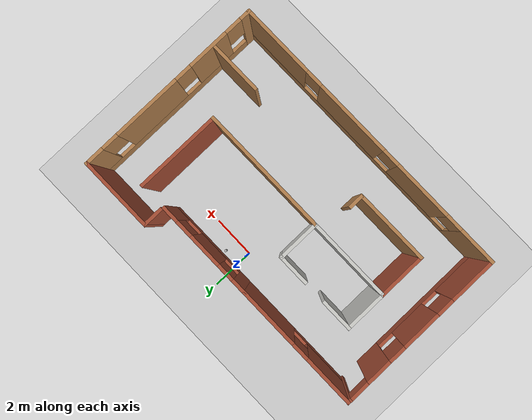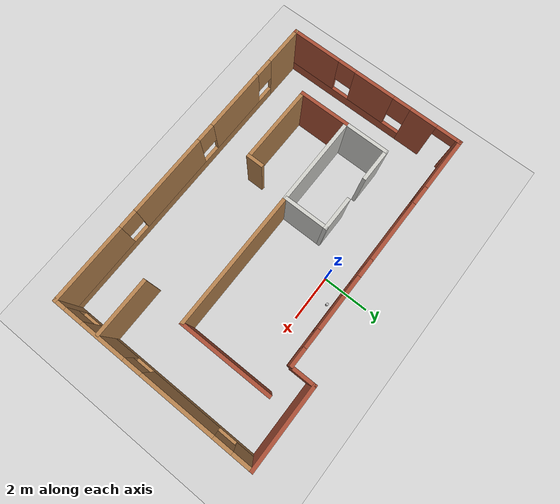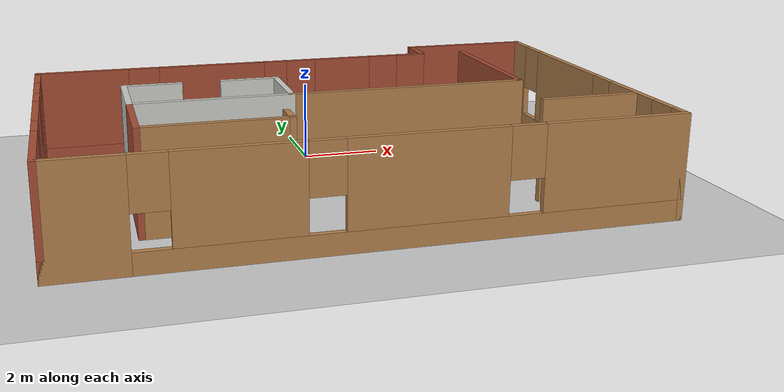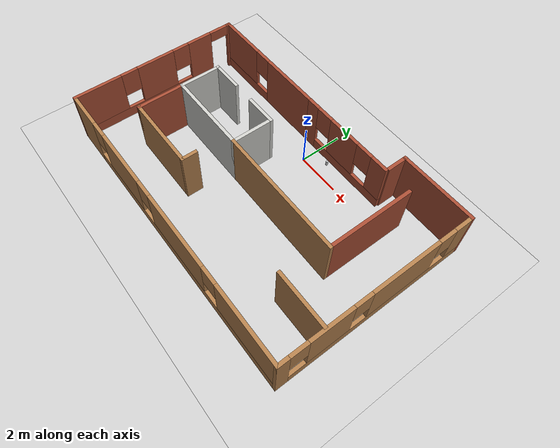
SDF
<sdf version="1.7">
 <world name="default">
  <light name="sun" type="directional">
   <pose>0 0 10 0 -0 0</pose>
   <diffuse>0.8 0.8 0.8 1</diffuse>
   <specular>0.2 0.2 0.2 1</specular>
   <attenuation>
    <range>1000</range>
    <constant>0.9</constant>
    <linear>0.01</linear>
    <quadratic>0.001</quadratic>
   </attenuation>
   <direction>-0.5 0.1 -0.9</direction>
   <spot><inner_angle>0</inner_angle><outer_angle>0</outer_angle><falloff>0</falloff></spot>
  </light>
  <model name="ground_plane">
   <static>1</static>
   <link name="link">
    <collision name="collision">
     <geometry><plane><normal>0 0 1</normal><size>100 100</size></plane></geometry>
     <surface>
      <contact><collide_bitmask>65535</collide_bitmask></contact>
      <friction><ode><mu>100</mu><mu2>50</mu2></ode></friction>
     </surface>
    </collision>
    <visual name="visual">
     <cast_shadows>0</cast_shadows>
     <geometry><plane><normal>0 0 1</normal><size>100 100</size></plane></geometry>
     <material>
      <script><uri>file://media/materials/scripts/gazebo.material</uri><name>Gazebo/Grey</name></script>
     </material>
    </visual>
   </link>
  </model>
  <gravity>0 0 -9.8</gravity>
  <magnetic_field>6e-06 2.3e-05 -4.2e-05</magnetic_field>
  <atmosphere type="adiabatic"/>
  <physics type="ode">
   <max_step_size>0.001</max_step_size>
   <real_time_factor>1</real_time_factor>
   <real_time_update_rate>1000</real_time_update_rate>
  </physics>
  <scene><ambient>0.4 0.4 0.4 1</ambient><background>0.7 0.7 0.7 1</background><shadows>1</shadows></scene>
  <spherical_coordinates>
   <surface_model>EARTH_WGS84</surface_model>
   <latitude_deg>0</latitude_deg>
   <longitude_deg>0</longitude_deg>
   <elevation>0</elevation>
   <heading_deg>0</heading_deg>
  </spherical_coordinates>
  <model name="my_world">
   <pose>0.05856 -2.00542 0 0 -0 0</pose>
   <link name="Wall_1">
    <collision name="Wall_1_Collision">
     <geometry><box><size>4 0.15 2.5</size></box></geometry>
     <pose>0 0 1.25 0 -0 0</pose>
    </collision>
    <visual name="Wall_1_Visual">
     <pose>0 0 1.25 0 -0 0</pose>
     <geometry><box><size>4 0.15 2.5</size></box></geometry>
     <material>
      <script><uri>file://media/materials/scripts/gazebo.material</uri><name>Gazebo/Bricks</name></script>
      <ambient>1 1 1 1</ambient>
     </material>
     <meta><layer>0</layer></meta>
    </visual>
    <pose>4.775 0.989327 0 0 -0 -1.5708</pose>
   </link>
   <link name="Wall_10">
    <collision name="Wall_10_Collision">
     <geometry><box><size>3.5 0.15 2.5</size></box></geometry>
     <pose>0 0 1.25 0 -0 0</pose>
    </collision>
    <visual name="Wall_10_Visual">
     <pose>0 0 1.25 0 -0 0</pose>
     <geometry><box><size>3.5 0.15 2.5</size></box></geometry>
     <material>
      <script><uri>file://media/materials/scripts/gazebo.material</uri><name>Gazebo/Bricks</name></script>
      <ambient>1 1 1 1</ambient>
     </material>
     <meta><layer>0</layer></meta>
    </visual>
    <pose>5.25 3.91433 0 0 -0 3.14159</pose>
   </link>
   <link name="Wall_11">
    <collision name="Wall_11_Collision">
     <geometry><box><size>1 0.15 2.5</size></box></geometry>
     <pose>0 0 1.25 0 -0 0</pose>
    </collision>
    <visual name="Wall_11_Visual">
     <pose>0 0 1.25 0 -0 0</pose>
     <geometry><box><size>1 0.15 2.5</size></box></geometry>
     <material>
      <script><uri>file://media/materials/scripts/gazebo.material</uri><name>Gazebo/Bricks</name></script>
      <ambient>1 1 1 1</ambient>
     </material>
     <meta><layer>0</layer></meta>
    </visual>
    <pose>3.575 3.48933 0 0 -0 -1.5708</pose>
   </link>
   <link name="Wall_13">
    <pose>1.225 2.91433 0 0 -0 0</pose>
    <visual name="Wall_13_Visual_0">
     <pose>-1.98898 0 1.25 0 -0 0</pose>
     <geometry><box><size>0.772032 0.15 2.5</size></box></geometry>
     <material>
      <script><uri>file://media/materials/scripts/gazebo.material</uri><name>Gazebo/Bricks</name></script>
      <ambient>1 1 1 1</ambient>
     </material>
     <meta><layer>0</layer></meta>
    </visual>
    <collision name="Wall_13_Collision_0">
     <geometry><box><size>0.772032 0.15 2.5</size></box></geometry>
     <pose>-1.98898 0 1.25 0 -0 0</pose>
    </collision>
    <visual name="Wall_13_Visual_1">
     <pose>0.386016 0 0.25 0 -0 0</pose>
     <geometry><box><size>3.97797 0.15 0.5</size></box></geometry>
     <material>
      <script><uri>file://media/materials/scripts/gazebo.material</uri><name>Gazebo/Bricks</name></script>
      <ambient>1 1 1 1</ambient>
     </material>
     <meta><layer>0</layer></meta>
    </visual>
    <collision name="Wall_13_Collision_1">
     <geometry><box><size>3.97797 0.15 0.5</size></box></geometry>
     <pose>0.386016 0 0.25 0 -0 0</pose>
    </collision>
    <visual name="Wall_13_Visual_2">
     <pose>-0.022388 0 1.5 0 -0 0</pose>
     <geometry><box><size>1.56116 0.15 2</size></box></geometry>
     <material>
      <script><uri>file://media/materials/scripts/gazebo.material</uri><name>Gazebo/Bricks</name></script>
      <ambient>1 1 1 1</ambient>
     </material>
     <meta><layer>0</layer></meta>
    </visual>
    <collision name="Wall_13_Collision_2">
     <geometry><box><size>1.56116 0.15 2</size></box></geometry>
     <pose>-0.022388 0 1.5 0 -0 0</pose>
    </collision>
    <visual name="Wall_13_Visual_3">
     <pose>1.9666 0 1.5 0 -0 0</pose>
     <geometry><box><size>0.816809 0.15 2</size></box></geometry>
     <material>
      <script><uri>file://media/materials/scripts/gazebo.material</uri><name>Gazebo/Bricks</name></script>
      <ambient>1 1 1 1</ambient>
     </material>
     <meta><layer>0</layer></meta>
    </visual>
    <collision name="Wall_13_Collision_3">
     <geometry><box><size>0.816809 0.15 2</size></box></geometry>
     <pose>1.9666 0 1.5 0 -0 0</pose>
    </collision>
    <visual name="Wall_13_Visual_4">
     <pose>-1.20297 0 1.9 0 -0 0</pose>
     <geometry><box><size>0.8 0.15 1.2</size></box></geometry>
     <material>
      <script><uri>file://media/materials/scripts/gazebo.material</uri><name>Gazebo/Bricks</name></script>
      <ambient>1 1 1 1</ambient>
     </material>
     <meta><layer>0</layer></meta>
    </visual>
    <collision name="Wall_13_Collision_4">
     <geometry><box><size>0.8 0.15 1.2</size></box></geometry>
     <pose>-1.20297 0 1.9 0 -0 0</pose>
    </collision>
    <visual name="Wall_13_Visual_5">
     <pose>1.15819 0 1.9 0 -0 0</pose>
     <geometry><box><size>0.8 0.15 1.2</size></box></geometry>
     <material>
      <script><uri>file://media/materials/scripts/gazebo.material</uri><name>Gazebo/Bricks</name></script>
      <ambient>1 1 1 1</ambient>
     </material>
     <meta><layer>0</layer></meta>
    </visual>
    <collision name="Wall_13_Collision_5">
     <geometry><box><size>0.8 0.15 1.2</size></box></geometry>
     <pose>1.15819 0 1.9 0 -0 0</pose>
    </collision>
   </link>
   <link name="Wall_15">
    <collision name="Wall_15_Collision">
     <geometry><box><size>1.5 0.15 2.5</size></box></geometry>
     <pose>0 0 1.25 0 -0 0</pose>
    </collision>
    <visual name="Wall_15_Visual">
     <pose>0 0 1.25 0 -0 0</pose>
     <geometry><box><size>1.5 0.15 2.5</size></box></geometry>
     <material>
      <script><uri>file://media/materials/scripts/gazebo.material</uri><name>Gazebo/CeilingTiled</name></script>
      <ambient>1 1 1 1</ambient>
     </material>
     <meta><layer>0</layer></meta>
    </visual>
    <pose>-1.75 0.914328 0 0 -0 3.14159</pose>
   </link>
   <link name="Wall_19">
    <collision name="Wall_19_Collision">
     <geometry><box><size>1.5 0.15 2.5</size></box></geometry>
     <pose>0 0 1.25 0 -0 0</pose>
    </collision>
    <visual name="Wall_19_Visual">
     <pose>0 0 1.25 0 -0 0</pose>
     <geometry><box><size>1.5 0.15 2.5</size></box></geometry>
     <material>
      <script><uri>file://media/materials/scripts/gazebo.material</uri><name>Gazebo/CeilingTiled</name></script>
      <ambient>1 1 1 1</ambient>
     </material>
     <meta><layer>0</layer></meta>
    </visual>
    <pose>-4.2 0.914328 0 0 -0 3.14159</pose>
   </link>
   <link name="Wall_2">
    <collision name="Wall_2_Collision">
     <geometry><box><size>6 0.15 2.5</size></box></geometry>
     <pose>0 0 1.25 0 -0 0</pose>
    </collision>
    <visual name="Wall_2_Visual">
     <pose>0 0 1.25 0 -0 0</pose>
     <geometry><box><size>6 0.15 2.5</size></box></geometry>
     <material>
      <script><uri>file://media/materials/scripts/gazebo.material</uri><name>Gazebo/Wood</name></script>
      <ambient>1 1 1 1</ambient>
     </material>
     <meta><layer>0</layer></meta>
    </visual>
    <pose>1.85 -0.935673 0 0 -0 3.14159</pose>
   </link>
   <link name="Wall_20">
    <collision name="Wall_20_Collision">
     <geometry><box><size>2 0.15 2.5</size></box></geometry>
     <pose>0 0 1.25 0 -0 0</pose>
    </collision>
    <visual name="Wall_20_Visual">
     <pose>0 0 1.25 0 -0 0</pose>
     <geometry><box><size>2 0.15 2.5</size></box></geometry>
     <material>
      <script><uri>file://media/materials/scripts/gazebo.material</uri><name>Gazebo/CeilingTiled</name></script>
      <ambient>1 1 1 1</ambient>
     </material>
     <meta><layer>0</layer></meta>
    </visual>
    <pose>-4.875 -0.010673 0 0 -0 -1.5708</pose>
   </link>
   <link name="Wall_21">
    <collision name="Wall_21_Collision">
     <geometry><box><size>3.95 0.15 2.5</size></box></geometry>
     <pose>0 0 1.25 0 -0 0</pose>
    </collision>
    <visual name="Wall_21_Visual">
     <pose>0 0 1.25 0 -0 0</pose>
     <geometry><box><size>3.95 0.15 2.5</size></box></geometry>
     <material>
      <script><uri>file://media/materials/scripts/gazebo.material</uri><name>Gazebo/CeilingTiled</name></script>
      <ambient>1 1 1 1</ambient>
     </material>
     <meta><layer>0</layer></meta>
    </visual>
    <pose>-2.975 -0.935673 0 0 -0 0</pose>
   </link>
   <link name="Wall_23">
    <collision name="Wall_23_Collision">
     <geometry><box><size>2.25 0.15 2.5</size></box></geometry>
     <pose>0 0 1.25 0 -0 0</pose>
    </collision>
    <visual name="Wall_23_Visual">
     <pose>0 0 1.25 0 -0 0</pose>
     <geometry><box><size>2.25 0.15 2.5</size></box></geometry>
     <material>
      <script><uri>file://media/materials/scripts/gazebo.material</uri><name>Gazebo/Bricks</name></script>
      <ambient>1 1 1 1</ambient>
     </material>
     <meta><layer>0</layer></meta>
    </visual>
    <pose>-4.875 -1.98567 0 0 -0 -1.5708</pose>
   </link>
   <link name="Wall_24">
    <collision name="Wall_24_Collision">
     <geometry><box><size>3.5 0.15 2.5</size></box></geometry>
     <pose>0 0 1.25 0 -0 0</pose>
    </collision>
    <visual name="Wall_24_Visual">
     <pose>0 0 1.25 0 -0 0</pose>
     <geometry><box><size>3.5 0.15 2.5</size></box></geometry>
     <material>
      <script><uri>file://media/materials/scripts/gazebo.material</uri><name>Gazebo/Wood</name></script>
      <ambient>1 1 1 1</ambient>
     </material>
     <meta><layer>0</layer></meta>
    </visual>
    <pose>-3.2 -3.03567 0 0 -0 0</pose>
   </link>
   <link name="Wall_25">
    <collision name="Wall_25_Collision">
     <geometry><box><size>0.75 0.15 2.5</size></box></geometry>
     <pose>0 0 1.25 0 -0 0</pose>
    </collision>
    <visual name="Wall_25_Visual">
     <pose>0 0 1.25 0 -0 0</pose>
     <geometry><box><size>0.75 0.15 2.5</size></box></geometry>
     <material>
      <script><uri>file://media/materials/scripts/gazebo.material</uri><name>Gazebo/Wood</name></script>
      <ambient>1 1 1 1</ambient>
     </material>
     <meta><layer>0</layer></meta>
    </visual>
    <pose>-1.525 -2.73567 0 0 -0 1.5708</pose>
   </link>
   <link name="Wall_27">
    <collision name="Wall_27_Collision">
     <geometry><box><size>2.5 0.15 2.5</size></box></geometry>
     <pose>0 0 1.25 0 -0 0</pose>
    </collision>
    <visual name="Wall_27_Visual">
     <pose>0 0 1.25 0 -0 0</pose>
     <geometry><box><size>2.5 0.15 2.5</size></box></geometry>
     <material>
      <script><uri>file://media/materials/scripts/gazebo.material</uri><name>Gazebo/Wood</name></script>
      <ambient>1 1 1 1</ambient>
     </material>
     <meta><layer>0</layer></meta>
    </visual>
    <pose>5.66796 -2.9586 0 0 -0 0</pose>
   </link>
   <link name="Wall_3">
    <collision name="Wall_3_Collision">
     <geometry><box><size>2 0.15 2.5</size></box></geometry>
     <pose>0 0 1.25 0 -0 0</pose>
    </collision>
    <visual name="Wall_3_Visual">
     <pose>0 0 1.25 0 -0 0</pose>
     <geometry><box><size>2 0.15 2.5</size></box></geometry>
     <material>
      <script><uri>file://media/materials/scripts/gazebo.material</uri><name>Gazebo/CeilingTiled</name></script>
      <ambient>1 1 1 1</ambient>
     </material>
     <meta><layer>0</layer></meta>
    </visual>
    <pose>-1.075 -0.010673 0 0 -0 1.5708</pose>
   </link>
   <link name="Wall_6">
    <pose>-4 2.91433 0 0 -0 3.14159</pose>
    <visual name="Wall_6_Visual_0">
     <pose>-1.58597 0 1.25 0 -0 0</pose>
     <geometry><box><size>2.82805 0.15 2.5</size></box></geometry>
     <material>
      <script><uri>file://media/materials/scripts/gazebo.material</uri><name>Gazebo/Bricks</name></script>
      <ambient>1 1 1 1</ambient>
     </material>
     <meta><layer>0</layer></meta>
    </visual>
    <collision name="Wall_6_Collision_0">
     <geometry><box><size>2.82805 0.15 2.5</size></box></geometry>
     <pose>-1.58597 0 1.25 0 -0 0</pose>
    </collision>
    <visual name="Wall_6_Visual_1">
     <pose>1.41403 0 0.25 0 -0 0</pose>
     <geometry><box><size>3.17195 0.15 0.5</size></box></geometry>
     <material>
      <script><uri>file://media/materials/scripts/gazebo.material</uri><name>Gazebo/Bricks</name></script>
      <ambient>1 1 1 1</ambient>
     </material>
     <meta><layer>0</layer></meta>
    </visual>
    <collision name="Wall_6_Collision_1">
     <geometry><box><size>3.17195 0.15 0.5</size></box></geometry>
     <pose>1.41403 0 0.25 0 -0 0</pose>
    </collision>
    <visual name="Wall_6_Visual_2">
     <pose>1.81403 0 1.5 0 -0 0</pose>
     <geometry><box><size>2.37195 0.15 2</size></box></geometry>
     <material>
      <script><uri>file://media/materials/scripts/gazebo.material</uri><name>Gazebo/Bricks</name></script>
      <ambient>1 1 1 1</ambient>
     </material>
     <meta><layer>0</layer></meta>
    </visual>
    <collision name="Wall_6_Collision_2">
     <geometry><box><size>2.37195 0.15 2</size></box></geometry>
     <pose>1.81403 0 1.5 0 -0 0</pose>
    </collision>
    <visual name="Wall_6_Visual_3">
     <pose>0.228053 0 1.9 0 -0 0</pose>
     <geometry><box><size>0.8 0.15 1.2</size></box></geometry>
     <material>
      <script><uri>file://media/materials/scripts/gazebo.material</uri><name>Gazebo/Bricks</name></script>
      <ambient>1 1 1 1</ambient>
     </material>
     <meta><layer>0</layer></meta>
    </visual>
    <collision name="Wall_6_Collision_3">
     <geometry><box><size>0.8 0.15 1.2</size></box></geometry>
     <pose>0.228053 0 1.9 0 -0 0</pose>
    </collision>
   </link>
   <link name="Wall_7">
    <pose>-6.925 -1.01067 0 0 -0 -1.5708</pose>
    <visual name="Wall_7_Visual_0">
     <pose>-3.88155 0 1.25 0 -0 0</pose>
     <geometry><box><size>0.236903 0.15 2.5</size></box></geometry>
     <material>
      <script><uri>file://media/materials/scripts/gazebo.material</uri><name>Gazebo/Bricks</name></script>
      <ambient>1 1 1 1</ambient>
     </material>
     <meta><layer>0</layer></meta>
    </visual>
    <collision name="Wall_7_Collision_0">
     <geometry><box><size>0.236903 0.15 2.5</size></box></geometry>
     <pose>-3.88155 0 1.25 0 -0 0</pose>
    </collision>
    <visual name="Wall_7_Visual_1">
     <pose>-2.26493 0 1.25 0 -0 0</pose>
     <geometry><box><size>1.19634 0.15 2.5</size></box></geometry>
     <material>
      <script><uri>file://media/materials/scripts/gazebo.material</uri><name>Gazebo/Bricks</name></script>
      <ambient>1 1 1 1</ambient>
     </material>
     <meta><layer>0</layer></meta>
    </visual>
    <collision name="Wall_7_Collision_1">
     <geometry><box><size>1.19634 0.15 2.5</size></box></geometry>
     <pose>-2.26493 0 1.25 0 -0 0</pose>
    </collision>
    <visual name="Wall_7_Visual_2">
     <pose>1.16662 0 0.25 0 -0 0</pose>
     <geometry><box><size>5.66676 0.15 0.5</size></box></geometry>
     <material>
      <script><uri>file://media/materials/scripts/gazebo.material</uri><name>Gazebo/Bricks</name></script>
      <ambient>1 1 1 1</ambient>
     </material>
     <meta><layer>0</layer></meta>
    </visual>
    <collision name="Wall_7_Collision_2">
     <geometry><box><size>5.66676 0.15 0.5</size></box></geometry>
     <pose>1.16662 0 0.25 0 -0 0</pose>
    </collision>
    <visual name="Wall_7_Visual_3">
     <pose>0.044995 0 1.5 0 -0 0</pose>
     <geometry><box><size>1.82351 0.15 2</size></box></geometry>
     <material>
      <script><uri>file://media/materials/scripts/gazebo.material</uri><name>Gazebo/Bricks</name></script>
      <ambient>1 1 1 1</ambient>
     </material>
     <meta><layer>0</layer></meta>
    </visual>
    <collision name="Wall_7_Collision_3">
     <geometry><box><size>1.82351 0.15 2</size></box></geometry>
     <pose>0.044995 0 1.5 0 -0 0</pose>
    </collision>
    <visual name="Wall_7_Visual_4">
     <pose>2.87838 0 1.5 0 -0 0</pose>
     <geometry><box><size>2.24325 0.15 2</size></box></geometry>
     <material>
      <script><uri>file://media/materials/scripts/gazebo.material</uri><name>Gazebo/Bricks</name></script>
      <ambient>1 1 1 1</ambient>
     </material>
     <meta><layer>0</layer></meta>
    </visual>
    <collision name="Wall_7_Collision_4">
     <geometry><box><size>2.24325 0.15 2</size></box></geometry>
     <pose>2.87838 0 1.5 0 -0 0</pose>
    </collision>
    <visual name="Wall_7_Visual_5">
     <pose>-1.26676 0 1.9 0 -0 0</pose>
     <geometry><box><size>0.8 0.15 1.2</size></box></geometry>
     <material>
      <script><uri>file://media/materials/scripts/gazebo.material</uri><name>Gazebo/Bricks</name></script>
      <ambient>1 1 1 1</ambient>
     </material>
     <meta><layer>0</layer></meta>
    </visual>
    <collision name="Wall_7_Collision_5">
     <geometry><box><size>0.8 0.15 1.2</size></box></geometry>
     <pose>-1.26676 0 1.9 0 -0 0</pose>
    </collision>
    <visual name="Wall_7_Visual_6">
     <pose>1.35675 0 1.9 0 -0 0</pose>
     <geometry><box><size>0.8 0.15 1.2</size></box></geometry>
     <material>
      <script><uri>file://media/materials/scripts/gazebo.material</uri><name>Gazebo/Bricks</name></script>
      <ambient>1 1 1 1</ambient>
     </material>
     <meta><layer>0</layer></meta>
    </visual>
    <collision name="Wall_7_Collision_6">
     <geometry><box><size>0.8 0.15 1.2</size></box></geometry>
     <pose>1.35675 0 1.9 0 -0 0</pose>
    </collision>
    <visual name="Wall_7_Visual_7">
     <pose>-3.3131 0 2.25 0 -0 0</pose>
     <geometry><box><size>0.9 0.15 0.5</size></box></geometry>
     <material>
      <script><uri>file://media/materials/scripts/gazebo.material</uri><name>Gazebo/Bricks</name></script>
      <ambient>1 1 1 1</ambient>
     </material>
     <meta><layer>0</layer></meta>
    </visual>
    <collision name="Wall_7_Collision_7">
     <geometry><box><size>0.9 0.15 0.5</size></box></geometry>
     <pose>-3.3131 0 2.25 0 -0 0</pose>
    </collision>
   </link>
   <link name="Wall_8">
    <pose>0 -4.93567 0 0 -0 0</pose>
    <visual name="Wall_8_Visual_0">
     <pose>-6.10261 0 1.25 0 -0 0</pose>
     <geometry><box><size>1.79478 0.15 2.5</size></box></geometry>
     <material>
      <script><uri>file://media/materials/scripts/gazebo.material</uri><name>Gazebo/Wood</name></script>
      <ambient>1 1 1 1</ambient>
     </material>
     <meta><layer>0</layer></meta>
    </visual>
    <collision name="Wall_8_Collision_0">
     <geometry><box><size>1.79478 0.15 2.5</size></box></geometry>
     <pose>-6.10261 0 1.25 0 -0 0</pose>
    </collision>
    <visual name="Wall_8_Visual_1">
     <pose>0.897388 0 0.25 0 -0 0</pose>
     <geometry><box><size>12.2052 0.15 0.5</size></box></geometry>
     <material>
      <script><uri>file://media/materials/scripts/gazebo.material</uri><name>Gazebo/Wood</name></script>
      <ambient>1 1 1 1</ambient>
     </material>
     <meta><layer>0</layer></meta>
    </visual>
    <collision name="Wall_8_Collision_1">
     <geometry><box><size>12.2052 0.15 0.5</size></box></geometry>
     <pose>0.897388 0 0.25 0 -0 0</pose>
    </collision>
    <visual name="Wall_8_Visual_2">
     <pose>-3.02124 0 1.5 0 -0 0</pose>
     <geometry><box><size>2.76797 0.15 2</size></box></geometry>
     <material>
      <script><uri>file://media/materials/scripts/gazebo.material</uri><name>Gazebo/Wood</name></script>
      <ambient>1 1 1 1</ambient>
     </material>
     <meta><layer>0</layer></meta>
    </visual>
    <collision name="Wall_8_Collision_2">
     <geometry><box><size>2.76797 0.15 2</size></box></geometry>
     <pose>-3.02124 0 1.5 0 -0 0</pose>
    </collision>
    <visual name="Wall_8_Visual_3">
     <pose>0.957751 0 1.5 0 -0 0</pose>
     <geometry><box><size>3.59001 0.15 2</size></box></geometry>
     <material>
      <script><uri>file://media/materials/scripts/gazebo.material</uri><name>Gazebo/Wood</name></script>
      <ambient>1 1 1 1</ambient>
     </material>
     <meta><layer>0</layer></meta>
    </visual>
    <collision name="Wall_8_Collision_3">
     <geometry><box><size>3.59001 0.15 2</size></box></geometry>
     <pose>0.957751 0 1.5 0 -0 0</pose>
    </collision>
    <visual name="Wall_8_Visual_4">
     <pose>5.27638 0 1.5 0 -0 0</pose>
     <geometry><box><size>3.44725 0.15 2</size></box></geometry>
     <material>
      <script><uri>file://media/materials/scripts/gazebo.material</uri><name>Gazebo/Wood</name></script>
      <ambient>1 1 1 1</ambient>
     </material>
     <meta><layer>0</layer></meta>
    </visual>
    <collision name="Wall_8_Collision_4">
     <geometry><box><size>3.44725 0.15 2</size></box></geometry>
     <pose>5.27638 0 1.5 0 -0 0</pose>
    </collision>
    <visual name="Wall_8_Visual_5">
     <pose>-4.80523 0 1.9 0 -0 0</pose>
     <geometry><box><size>0.8 0.15 1.2</size></box></geometry>
     <material>
      <script><uri>file://media/materials/scripts/gazebo.material</uri><name>Gazebo/Wood</name></script>
      <ambient>1 1 1 1</ambient>
     </material>
     <meta><layer>0</layer></meta>
    </visual>
    <collision name="Wall_8_Collision_5">
     <geometry><box><size>0.8 0.15 1.2</size></box></geometry>
     <pose>-4.80523 0 1.9 0 -0 0</pose>
    </collision>
    <visual name="Wall_8_Visual_6">
     <pose>-1.23725 0 1.9 0 -0 0</pose>
     <geometry><box><size>0.8 0.15 1.2</size></box></geometry>
     <material>
      <script><uri>file://media/materials/scripts/gazebo.material</uri><name>Gazebo/Wood</name></script>
      <ambient>1 1 1 1</ambient>
     </material>
     <meta><layer>0</layer></meta>
    </visual>
    <collision name="Wall_8_Collision_6">
     <geometry><box><size>0.8 0.15 1.2</size></box></geometry>
     <pose>-1.23725 0 1.9 0 -0 0</pose>
    </collision>
    <visual name="Wall_8_Visual_7">
     <pose>3.15275 0 1.9 0 -0 0</pose>
     <geometry><box><size>0.8 0.15 1.2</size></box></geometry>
     <material>
      <script><uri>file://media/materials/scripts/gazebo.material</uri><name>Gazebo/Wood</name></script>
      <ambient>1 1 1 1</ambient>
     </material>
     <meta><layer>0</layer></meta>
    </visual>
    <collision name="Wall_8_Collision_7">
     <geometry><box><size>0.8 0.15 1.2</size></box></geometry>
     <pose>3.15275 0 1.9 0 -0 0</pose>
    </collision>
   </link>
   <link name="Wall_9">
    <pose>6.925 -0.510673 0 0 -0 1.5708</pose>
    <visual name="Wall_9_Visual_0">
     <pose>-4.22664 0 1.25 0 -0 0</pose>
     <geometry><box><size>0.546715 0.15 2.5</size></box></geometry>
     <material>
      <script><uri>file://media/materials/scripts/gazebo.material</uri><name>Gazebo/Wood</name></script>
      <ambient>1 1 1 1</ambient>
     </material>
     <meta><layer>0</layer></meta>
    </visual>
    <collision name="Wall_9_Collision_0">
     <geometry><box><size>0.546715 0.15 2.5</size></box></geometry>
     <pose>-4.22664 0 1.25 0 -0 0</pose>
    </collision>
    <visual name="Wall_9_Visual_1">
     <pose>0.273357 0 0.25 0 -0 0</pose>
     <geometry><box><size>8.45328 0.15 0.5</size></box></geometry>
     <material>
      <script><uri>file://media/materials/scripts/gazebo.material</uri><name>Gazebo/Wood</name></script>
      <ambient>1 1 1 1</ambient>
     </material>
     <meta><layer>0</layer></meta>
    </visual>
    <collision name="Wall_9_Collision_1">
     <geometry><box><size>8.45328 0.15 0.5</size></box></geometry>
     <pose>0.273357 0 0.25 0 -0 0</pose>
    </collision>
    <visual name="Wall_9_Visual_2">
     <pose>-2.18031 0 1.5 0 -0 0</pose>
     <geometry><box><size>1.94594 0.15 2</size></box></geometry>
     <material>
      <script><uri>file://media/materials/scripts/gazebo.material</uri><name>Gazebo/Wood</name></script>
      <ambient>1 1 1 1</ambient>
     </material>
     <meta><layer>0</layer></meta>
    </visual>
    <collision name="Wall_9_Collision_2">
     <geometry><box><size>1.94594 0.15 2</size></box></geometry>
     <pose>-2.18031 0 1.5 0 -0 0</pose>
    </collision>
    <visual name="Wall_9_Visual_3">
     <pose>1.18652 0 1.5 0 -0 0</pose>
     <geometry><box><size>3.18773 0.15 2</size></box></geometry>
     <material>
      <script><uri>file://media/materials/scripts/gazebo.material</uri><name>Gazebo/Wood</name></script>
      <ambient>1 1 1 1</ambient>
     </material>
     <meta><layer>0</layer></meta>
    </visual>
    <collision name="Wall_9_Collision_3">
     <geometry><box><size>3.18773 0.15 2</size></box></geometry>
     <pose>1.18652 0 1.5 0 -0 0</pose>
    </collision>
    <visual name="Wall_9_Visual_4">
     <pose>4.04019 0 1.5 0 -0 0</pose>
     <geometry><box><size>0.919612 0.15 2</size></box></geometry>
     <material>
      <script><uri>file://media/materials/scripts/gazebo.material</uri><name>Gazebo/Wood</name></script>
      <ambient>1 1 1 1</ambient>
     </material>
     <meta><layer>0</layer></meta>
    </visual>
    <collision name="Wall_9_Collision_4">
     <geometry><box><size>0.919612 0.15 2</size></box></geometry>
     <pose>4.04019 0 1.5 0 -0 0</pose>
    </collision>
    <visual name="Wall_9_Visual_5">
     <pose>-3.55328 0 1.9 0 -0 0</pose>
     <geometry><box><size>0.8 0.15 1.2</size></box></geometry>
     <material>
      <script><uri>file://media/materials/scripts/gazebo.material</uri><name>Gazebo/Wood</name></script>
      <ambient>1 1 1 1</ambient>
     </material>
     <meta><layer>0</layer></meta>
    </visual>
    <collision name="Wall_9_Collision_5">
     <geometry><box><size>0.8 0.15 1.2</size></box></geometry>
     <pose>-3.55328 0 1.9 0 -0 0</pose>
    </collision>
    <visual name="Wall_9_Visual_6">
     <pose>-0.807346 0 1.9 0 -0 0</pose>
     <geometry><box><size>0.8 0.15 1.2</size></box></geometry>
     <material>
      <script><uri>file://media/materials/scripts/gazebo.material</uri><name>Gazebo/Wood</name></script>
      <ambient>1 1 1 1</ambient>
     </material>
     <meta><layer>0</layer></meta>
    </visual>
    <collision name="Wall_9_Collision_6">
     <geometry><box><size>0.8 0.15 1.2</size></box></geometry>
     <pose>-0.807346 0 1.9 0 -0 0</pose>
    </collision>
    <visual name="Wall_9_Visual_7">
     <pose>3.18039 0 1.9 0 -0 0</pose>
     <geometry><box><size>0.8 0.15 1.2</size></box></geometry>
     <material>
      <script><uri>file://media/materials/scripts/gazebo.material</uri><name>Gazebo/Wood</name></script>
      <ambient>1 1 1 1</ambient>
     </material>
     <meta><layer>0</layer></meta>
    </visual>
    <collision name="Wall_9_Collision_7">
     <geometry><box><size>0.8 0.15 1.2</size></box></geometry>
     <pose>3.18039 0 1.9 0 -0 0</pose>
    </collision>
   </link>
   <static>1</static>
  </model>
  <model name="beer">
   <link name="link">
    <pose>0 0 0.115 0 -0 0</pose>
    <inertial>
     <mass>0.39</mass>
     <inertia><ixx>0.00058</ixx><ixy>0</ixy><ixz>0</ixz><iyy>0.00058</iyy><iyz>0</iyz><izz>0.00019</izz></inertia>
    </inertial>
    <collision name="collision">
     <geometry><cylinder><radius>0.055</radius><length>0.23</length></cylinder></geometry>
    </collision>
    <visual name="visual">
     <geometry><cylinder><radius>0.055</radius><length>0.23</length></cylinder></geometry>
     <material>
      <script>
       <uri>model://beer/materials/scripts</uri>
       <uri>model://beer/materials/textures</uri>
       <name>Beer/Diffuse</name>
      </script>
     </material>
    </visual>
   </link>
   <pose>0.801789 0.65683 -2e-06 1e-06 -0 -5e-06</pose>
  </model>
 </world>
</sdf>
